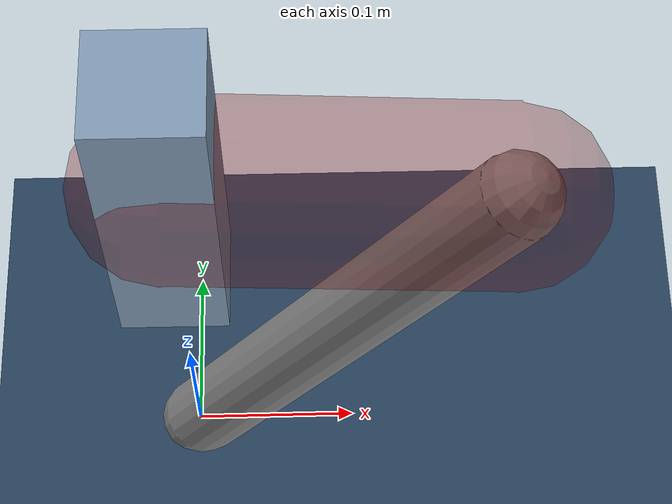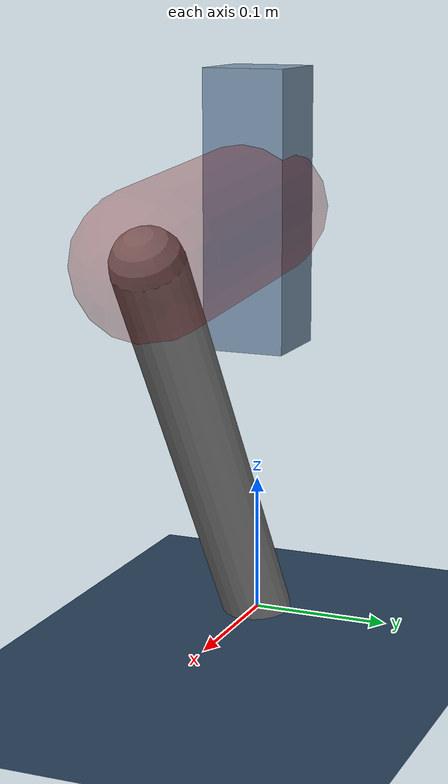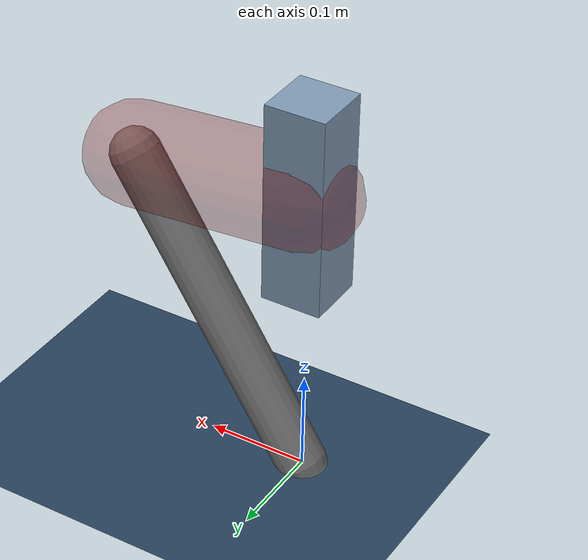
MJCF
<mujoco model="Hopper2D">
	<compiler inertiafromgeom="true" angle="radian" />
	<option timestep="0.001" integrator="implicit" cone="elliptic" solver="Newton" tolerance="1e-10" />

	<default>
		<geom contype="1" conaffinity="1" condim="3" friction="2 0.005 0.0001" solref="0.005 1" />
		<joint limited="true" damping="0.1" />
	</default>

	<asset>
		<texture name="skybox" type="skybox" builtin="gradient" rgb1=".4 .6 .8" rgb2="0 0 0" width="800" height="800" />
		<texture name="grid" type="2d" builtin="checker" rgb1=".1 .2 .3" rgb2=".2 .3 .4" width="300" height="300" mark="edge" markrgb=".2 .3 .4" />
		<material name="ground" texture="grid" texrepeat="1 1" texuniform="true" reflectance="0.1" />
		<material name="leg" rgba="0.5 0.6 0.7 1" />
	</asset>

	<worldbody>

		<geom name="floor" type="plane" size="5 5 0.25" material="ground" />

		<light directional="false" diffuse="0.8 0.8 0.8" specular="0.3 0.3 0.3" pos="0 0 2" dir="0 0 -1" />
		<light mode="targetbodycom" target="base" directional="false" diffuse="0.8 0.8 0.8" specular="0.3 0.3 0.3" pos="0 0 2" dir="0 0 -1" />

		<camera name="fixed" pos="0 -2 1" xyaxes="1 0 0 0 0 1" />
		<camera name="tracking" mode="trackcom" pos="0 -3 1" />

		<body name="root" pos="0 0 0.30055789587441895">
			<joint name="slide_x" type="slide" axis="1 0 0" range="-100 100" />
			<joint name="slide_z" type="slide" axis="0 0 1" range="0 10" />

			<body name="base" pos="0 0 0">
				<geom name="torso" type="box" size="0.03 0.03 0.1" mass="2.161" material="leg" />

				<body name="link1" pos="0 0 0" euler="0 0.07468660423431062 0">
					<joint type="hinge" axis="0 -1 0" pos="0 0 0" name="hinge1" limited="true" range="-3.14 3.14" stiffness="0" damping="0.1" />
					<geom name="thigh" type="capsule" fromto="0 0 0 0.1852267646132606 0 0" size="0.05" rgba="0.5 0 0 0.3" mass="0.6932669115331515" />

					<body name="link2" pos="0.1852267646132606 0 0" euler="0 2.068383383297288 0">
						<joint type="hinge" axis="0 -1 0" pos="0 0 0" name="hinge2" limited="true" range="-3.14 3.14" stiffness="0" damping="0.1" />
						<geom name="shank" type="capsule" fromto="0 0 0 0.34108052032783853 0 0" size="0.025" mass="0.5167644162622709" />

					</body>
				</body>
			</body>
		</body>
	</worldbody>

	<actuator>
		<motor name="torque1" joint="hinge1" ctrlrange="-49.5609953527663 49.5609953527663" ctrllimited="true" gear="1" />
		<motor name="torque2" joint="hinge2" ctrlrange="-62.3203989879303 62.3203989879303" ctrllimited="true" gear="1" />
	</actuator>
</mujoco>
